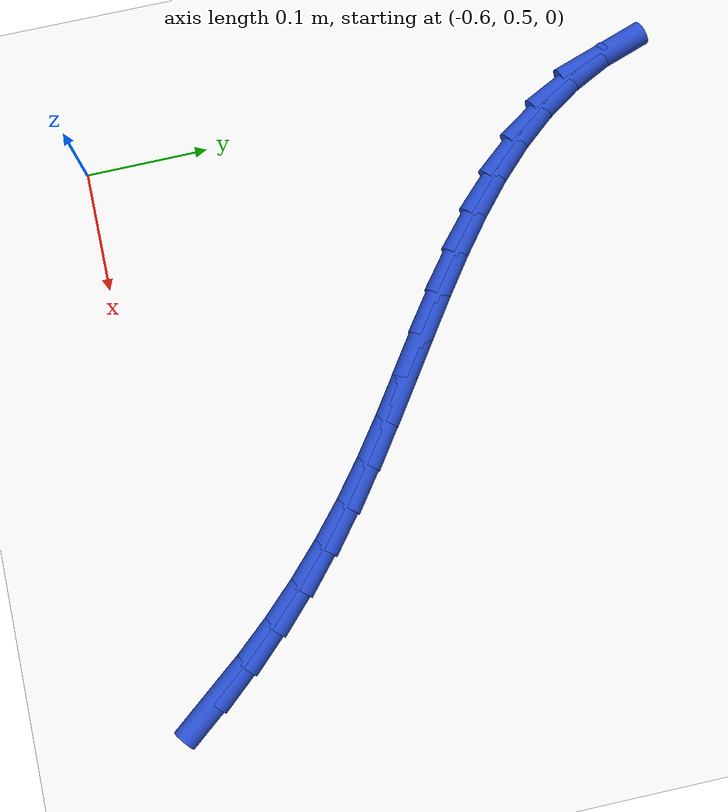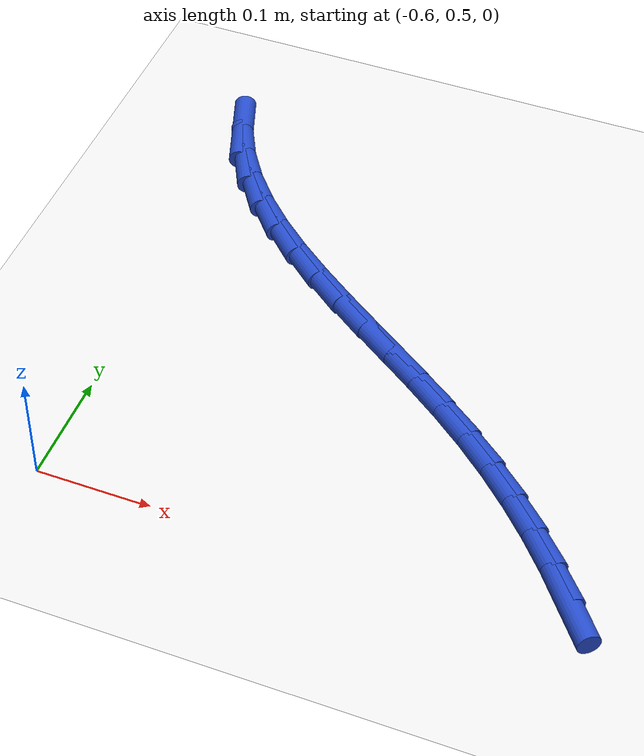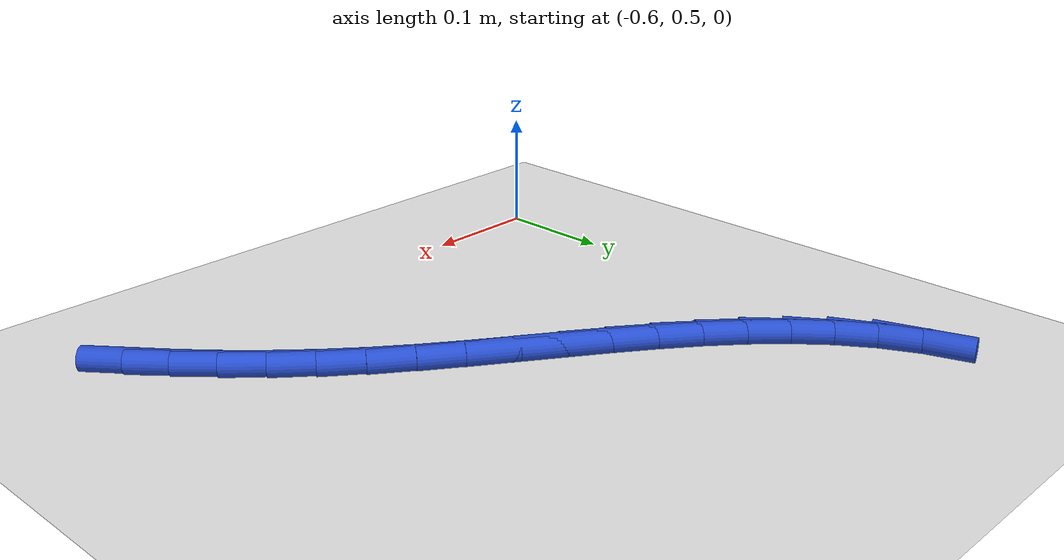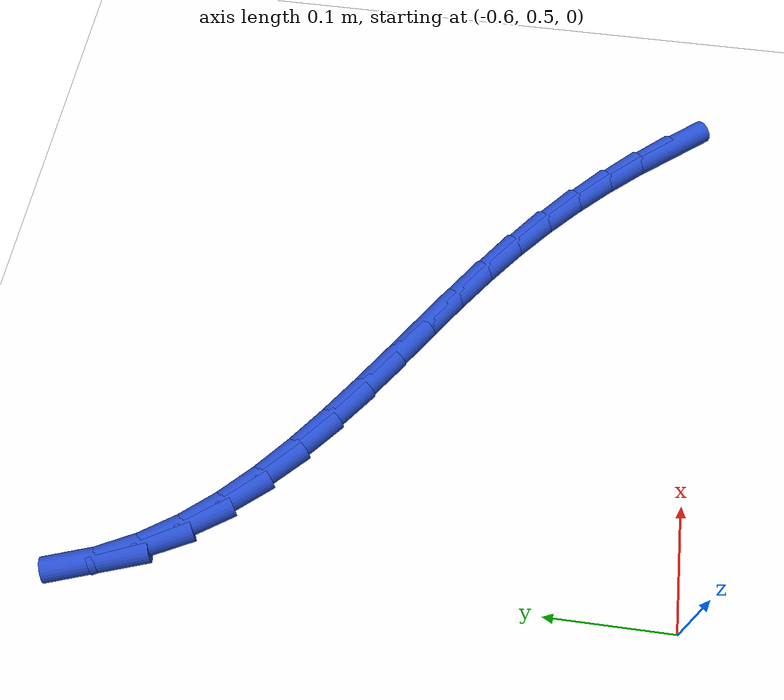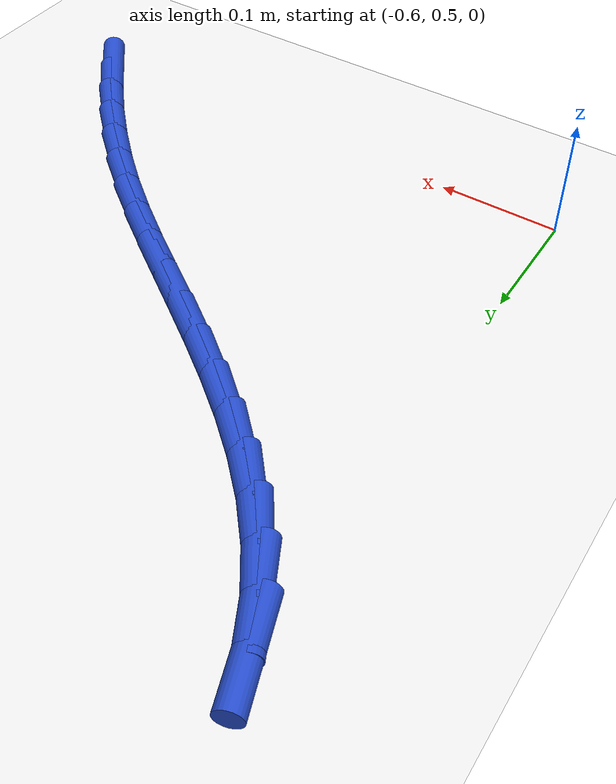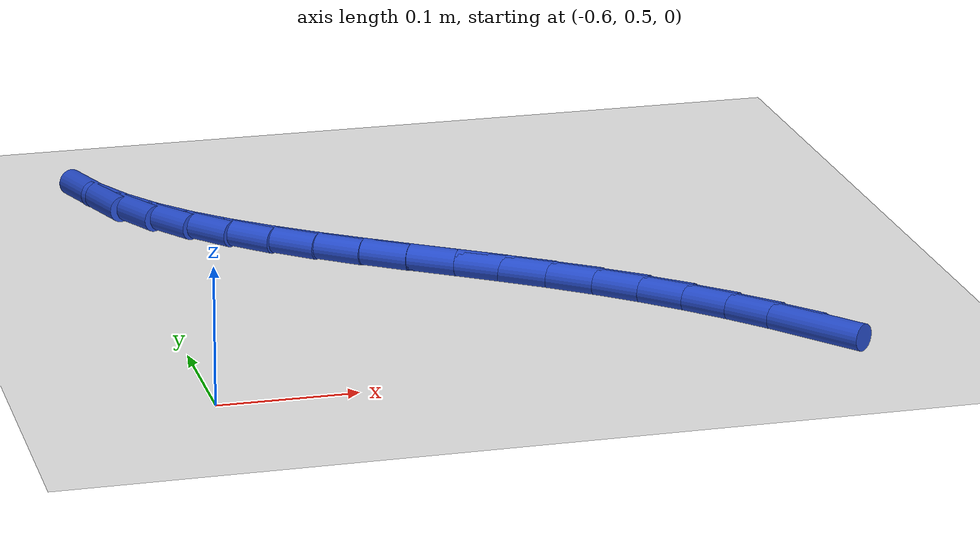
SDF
<sdf version="1.6">
 <world name="default">
  <model name="ground_plane">
   <static>1</static>
   <link name="link">
    <collision name="collision">
     <geometry><plane><normal>0 0 1</normal><size>100 100</size></plane></geometry>
     <surface><friction><ode><mu>100</mu><mu2>50</mu2></ode></friction></surface>
    </collision>
    <visual name="visual">
     <cast_shadows>0</cast_shadows>
     <geometry><plane><normal>0 0 1</normal><size>100 100</size></plane></geometry>
     <material>
      <script><uri>file://media/materials/scripts/gazebo.material</uri><name>Gazebo/WhiteGlow</name></script>
     </material>
    </visual>
   </link>
  </model>
  <model name="line">
   <link name="link_16">
    <pose>-0.16388357503190154 0.5230512402912586 0.01 0 1.57 -0.8984831738414026</pose>
    <collision name="collision">
     <geometry><cylinder><radius>0.01</radius><length>0.08</length></cylinder></geometry>
    </collision>
    <visual name="visual">
     <material>
      <script><name>Gazebo/Blue</name><uri>file://media/materials/scripts/gazebo.material</uri></script>
     </material>
     <geometry><cylinder><radius>0.01</radius><length>0.08</length></cylinder></geometry>
    </visual>
   </link>
   <link name="link_17">
    <pose>-0.18581961292032811 0.5506081720271246 0.01 0 1.57 -0.8518788364810641</pose>
    <collision name="collision">
     <geometry><cylinder><radius>0.01</radius><length>0.08</length></cylinder></geometry>
    </collision>
    <visual name="visual">
     <material>
      <script><name>Gazebo/Blue</name><uri>file://media/materials/scripts/gazebo.material</uri></script>
     </material>
     <geometry><cylinder><radius>0.01</radius><length>0.08</length></cylinder></geometry>
    </visual>
   </link>
   <link name="link_18">
    <pose>-0.20915146102545157 0.5772684342279475 0.01 0 1.57 -0.8050089864482842</pose>
    <collision name="collision">
     <geometry><cylinder><radius>0.01</radius><length>0.08</length></cylinder></geometry>
    </collision>
    <visual name="visual">
     <material>
      <script><name>Gazebo/Blue</name><uri>file://media/materials/scripts/gazebo.material</uri></script>
     </material>
     <geometry><cylinder><radius>0.01</radius><length>0.08</length></cylinder></geometry>
    </visual>
   </link>
   <link name="link_19">
    <pose>-0.23388173357107167 0.6029882004070912 0.01 0 1.57 -0.7579634013930133</pose>
    <collision name="collision">
     <geometry><cylinder><radius>0.01</radius><length>0.08</length></cylinder></geometry>
    </collision>
    <visual name="visual">
     <material>
      <script><name>Gazebo/Blue</name><uri>file://media/materials/scripts/gazebo.material</uri></script>
     </material>
     <geometry><cylinder><radius>0.01</radius><length>0.08</length></cylinder></geometry>
    </visual>
   </link>
   <link name="link_20">
    <pose>-0.2600130447809878 0.6277236440779193 0.01 0 1.57 -0.71083911494491</pose>
    <collision name="collision">
     <geometry><cylinder><radius>0.01</radius><length>0.08</length></cylinder></geometry>
    </collision>
    <visual name="visual">
     <material>
      <script><name>Gazebo/Blue</name><uri>file://media/materials/scripts/gazebo.material</uri></script>
     </material>
     <geometry><cylinder><radius>0.01</radius><length>0.08</length></cylinder></geometry>
    </visual>
   </link>
   <link name="link_21">
    <pose>-0.2875480088789996 0.6514309387537953 0.01 0 1.57 -0.6643515840784678</pose>
    <collision name="collision">
     <geometry><cylinder><radius>0.01</radius><length>0.08</length></cylinder></geometry>
    </collision>
    <visual name="visual">
     <material>
      <script><name>Gazebo/Blue</name><uri>file://media/materials/scripts/gazebo.material</uri></script>
     </material>
     <geometry><cylinder><radius>0.01</radius><length>0.08</length></cylinder></geometry>
    </visual>
   </link>
   <link name="link_22">
    <pose>-0.31647084819478766 0.6740804517627779 0.01 0 1.57 -0.6269630576750314</pose>
    <collision name="collision">
     <geometry><cylinder><radius>0.01</radius><length>0.08</length></cylinder></geometry>
    </collision>
    <visual name="visual">
     <material>
      <script><name>Gazebo/Blue</name><uri>file://media/materials/scripts/gazebo.material</uri></script>
     </material>
     <geometry><cylinder><radius>0.01</radius><length>0.08</length></cylinder></geometry>
    </visual>
   </link>
   <link name="link_23">
    <pose>-0.34650794613013647 0.695841535808761 0.01 0 1.57 -0.6042930348156507</pose>
    <collision name="collision">
     <geometry><cylinder><radius>0.01</radius><length>0.08</length></cylinder></geometry>
    </collision>
    <visual name="visual">
     <material>
      <script><name>Gazebo/Blue</name><uri>file://media/materials/scripts/gazebo.material</uri></script>
     </material>
     <geometry><cylinder><radius>0.01</radius><length>0.08</length></cylinder></geometry>
    </visual>
   </link>
   <link name="link_24">
    <pose>-0.3771957205392337 0.7170301481684748 0.01 0 1.57 -0.5959263366896604</pose>
    <collision name="collision">
     <geometry><cylinder><radius>0.01</radius><length>0.08</length></cylinder></geometry>
    </collision>
    <visual name="visual">
     <material>
      <script><name>Gazebo/Blue</name><uri>file://media/materials/scripts/gazebo.material</uri></script>
     </material>
     <geometry><cylinder><radius>0.01</radius><length>0.08</length></cylinder></geometry>
    </visual>
   </link>
   <link name="link_25">
    <pose>-0.4080661704362095 0.7379656563273272 0.01 0 1.57 -0.6017209444932522</pose>
    <collision name="collision">
     <geometry><cylinder><radius>0.01</radius><length>0.08</length></cylinder></geometry>
    </collision>
    <visual name="visual">
     <material>
      <script><name>Gazebo/Blue</name><uri>file://media/materials/scripts/gazebo.material</uri></script>
     </material>
     <geometry><cylinder><radius>0.01</radius><length>0.08</length></cylinder></geometry>
    </visual>
   </link>
   <link name="link_26">
    <pose>-0.4386512948351944 0.7589674277707265 0.01 0 1.57 -0.622000265243973</pose>
    <collision name="collision">
     <geometry><cylinder><radius>0.01</radius><length>0.08</length></cylinder></geometry>
    </collision>
    <visual name="visual">
     <material>
      <script><name>Gazebo/Blue</name><uri>file://media/materials/scripts/gazebo.material</uri></script>
     </material>
     <geometry><cylinder><radius>0.01</radius><length>0.08</length></cylinder></geometry>
    </visual>
   </link>
   <link name="link_27">
    <pose>-0.4684830927503188 0.780354829984081 0.01 0 1.57 -0.6575451356810288</pose>
    <collision name="collision">
     <geometry><cylinder><radius>0.01</radius><length>0.08</length></cylinder></geometry>
    </collision>
    <visual name="visual">
     <material>
      <script><name>Gazebo/Blue</name><uri>file://media/materials/scripts/gazebo.material</uri></script>
     </material>
     <geometry><cylinder><radius>0.01</radius><length>0.08</length></cylinder></geometry>
    </visual>
   </link>
   <link name="link_28">
    <pose>-0.49709356319571274 0.8024472304527982 0.01 0 1.57 -0.7095142828332632</pose>
    <collision name="collision">
     <geometry><cylinder><radius>0.01</radius><length>0.08</length></cylinder></geometry>
    </collision>
    <visual name="visual">
     <material>
      <script><name>Gazebo/Blue</name><uri>file://media/materials/scripts/gazebo.material</uri></script>
     </material>
     <geometry><cylinder><radius>0.01</radius><length>0.08</length></cylinder></geometry>
    </visual>
   </link>
   <link name="link_29">
    <pose>-0.5240147051855071 0.8255639966622869 0.01 0 1.57 -0.7792363855738176</pose>
    <collision name="collision">
     <geometry><cylinder><radius>0.01</radius><length>0.08</length></cylinder></geometry>
    </collision>
    <visual name="visual">
     <material>
      <script><name>Gazebo/Blue</name><uri>file://media/materials/scripts/gazebo.material</uri></script>
     </material>
     <geometry><cylinder><radius>0.01</radius><length>0.08</length></cylinder></geometry>
    </visual>
   </link>
   <link name="link_30">
    <pose>-0.5487785177338318 0.8500244960979546 0.01 0 1.57 -0.8677837048059173</pose>
    <collision name="collision">
     <geometry><cylinder><radius>0.01</radius><length>0.08</length></cylinder></geometry>
    </collision>
    <visual name="visual">
     <material>
      <script><name>Gazebo/Blue</name><uri>file://media/materials/scripts/gazebo.material</uri></script>
     </material>
     <geometry><cylinder><radius>0.01</radius><length>0.08</length></cylinder></geometry>
    </visual>
   </link>
   <link name="link_31">
    <pose>-0.5709169998548174 0.8761480962452101 0.01 0 1.57 -0.9752509637494551</pose>
    <collision name="collision">
     <geometry><cylinder><radius>0.01</radius><length>0.08</length></cylinder></geometry>
    </collision>
    <visual name="visual">
     <material>
      <script><name>Gazebo/Blue</name><uri>file://media/materials/scripts/gazebo.material</uri></script>
     </material>
     <geometry><cylinder><radius>0.01</radius><length>0.08</length></cylinder></geometry>
    </visual>
   </link>
   <link name="link_32">
    <pose>-0.5899621505625945 0.904254164589461 0.01 0 1.57 -1.099812868632254</pose>
    <collision name="collision">
     <geometry><cylinder><radius>0.01</radius><length>0.08</length></cylinder></geometry>
    </collision>
    <visual name="visual">
     <material>
      <script><name>Gazebo/Blue</name><uri>file://media/materials/scripts/gazebo.material</uri></script>
     </material>
     <geometry><cylinder><radius>0.01</radius><length>0.08</length></cylinder></geometry>
    </visual>
   </link>
   <link name="link_33">
    <pose>-0.6054459688712931 0.9346620686161153 0.01 0 1.57 -1.236975381873383</pose>
    <collision name="collision">
     <geometry><cylinder><radius>0.01</radius><length>0.08</length></cylinder></geometry>
    </collision>
    <visual name="visual">
     <material>
      <script><name>Gazebo/Blue</name><uri>file://media/materials/scripts/gazebo.material</uri></script>
     </material>
     <geometry><cylinder><radius>0.01</radius><length>0.08</length></cylinder></geometry>
    </visual>
   </link>
  </model>
 </world>
</sdf>
